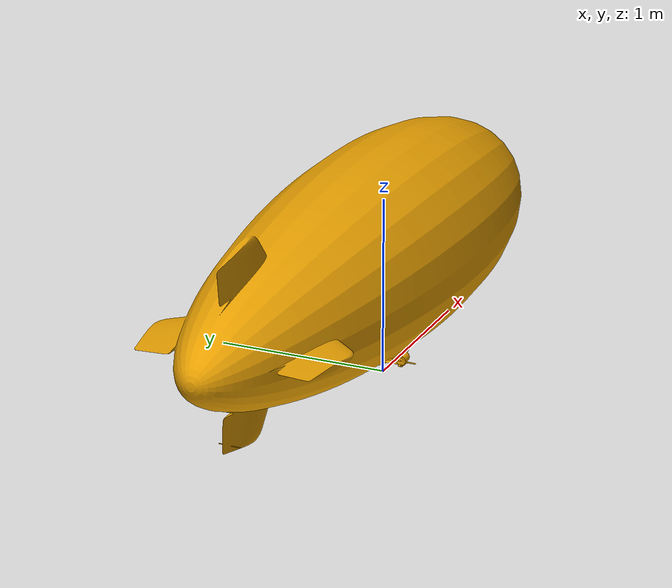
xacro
<?xml version="1.0"?>
<robot name="awesome_blimp" xmlns:xacro="http://ros.org/wiki/xacro">

  <xacro:macro name="default_inertial" params="mass">
    <inertial>
      <mass value="${mass}" />
      <inertia ixx="1.0" ixy="0.0" ixz="0.0" iyy="1.0" iyz="0.0" izz="1.0" />
    </inertial>
  </xacro:macro>

  <link name="base_link">
    <visual>
      <geometry>
        <mesh filename="package://blimp_description/meshes/blimp.dae"/>
      </geometry>
    </visual>
    <collision>
      <geometry>
        <mesh filename="package://blimp_description/meshes/blimp_collision.dae"/>
      </geometry>
    </collision>
    <xacro:default_inertial mass="10"/>
  </link>
</robot>
